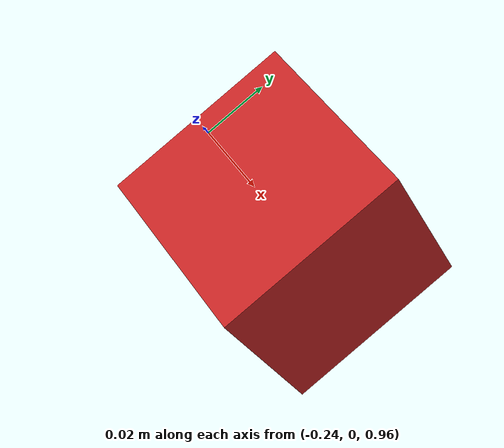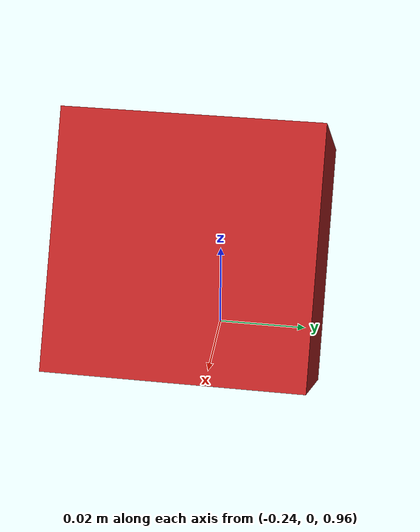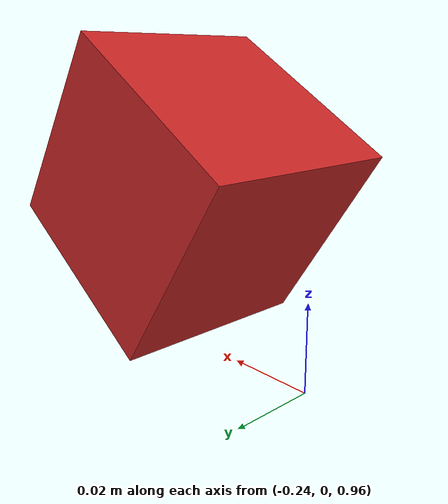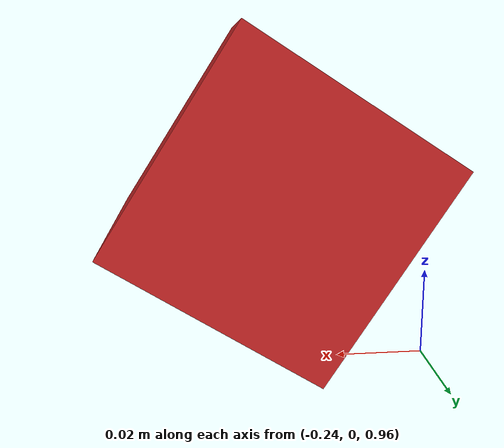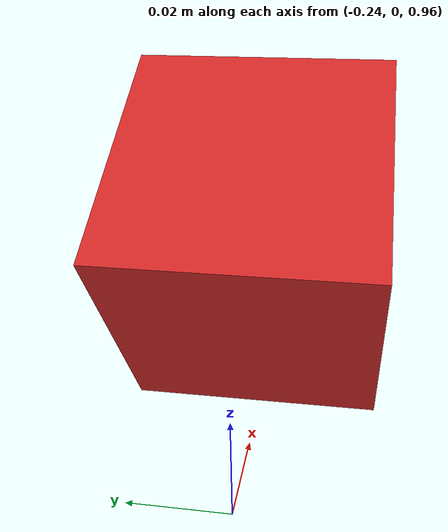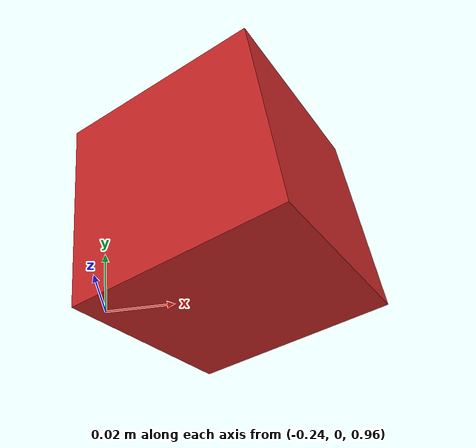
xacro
<?xml version="1.0"?>
<robot xmlns:xacro="http://www.ros.org/wiki/xacro" name="projector">

    <xacro:include filename="$(find projector)/urdf/inertial_macros.xacro"/>

    <link name="base_link"/>
    <link name="world"/>

    <joint name="world_joint" type="fixed">
        <parent link="world"/>
        <child link="base_link"/>
        <!-- TODO: check base_link name of robot -->
        <origin rpy="0.0 0.0 0.0" xyz="0.0 0.0 0.0"/>
    </joint>

    <link name="projector_link">
        <xacro:inertial_box mass="0.03" x="0.05" y="0.05" z="0.05">
            <origin xyz="0 0 0" rpy="0 0 0"/>
        </xacro:inertial_box>
        <visual>
            <origin xyz="0.0 0.0 0.0"/>
            <geometry>
                <box size="0.05 0.05 0.05"/>
            </geometry>
            <material name="red"/>
        </visual>
        <collision>
            <origin xyz="0.0 0.0 0.0"/>
            <geometry>
                <box size="0.05 0.05 0.05"/>
            </geometry>
        </collision>
    </link>

    <joint name="projector_joint" type="fixed">
        <origin xyz="-0.205 0.0 1.0" rpy="1.0 0.0 1.57"/>
        <parent link="base_link"/>
        <child link="projector_link"/>
    </joint>

    <!-- projector -->
    <gazebo reference="projector_link">
        <material>Gazebo/Red</material>
        <projector name="projector1">
            <pose> 0 0 0 0 0 0 </pose>
            <texture>building_frame.png</texture>
            <near_clip>0.01</near_clip>
            <far_clip>10.0</far_clip>
            <fov>0.5</fov>
            <plugin name="projector_controller" filename="libgazebo_ros_projector.so">
                <update_rate>10.0</update_rate>
            </plugin>
        </projector>
    </gazebo>

</robot>

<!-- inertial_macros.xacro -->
<robot xmlns:xacro="http://www.ros.org/wiki/xacro">

    <!-- Specify some standard inertial calculations https://en.wikipedia.org/wiki/List_of_moments_of_inertia -->
    <!-- These make use of xacro's mathematical functionality -->
    <!-- Author: https://github.com/joshnewans/articubot_one -->

    <xacro:macro name="inertial_sphere" params="mass radius *origin">
        <inertial>
            <xacro:insert_block name="origin"/>
            <mass value="${mass}" />
            <inertia ixx="${(2/5) * mass * (radius*radius)}" ixy="0.0" ixz="0.0"
                    iyy="${(2/5) * mass * (radius*radius)}" iyz="0.0"
                    izz="${(2/5) * mass * (radius*radius)}" />
        </inertial>
    </xacro:macro>

    <xacro:macro name="inertial_box" params="mass x y z *origin">
        <inertial>
            <xacro:insert_block name="origin"/>
            <mass value="${mass}" />
            <inertia ixx="${(1/12) * mass * (y*y+z*z)}" ixy="0.0" ixz="0.0"
                    iyy="${(1/12) * mass * (x*x+z*z)}" iyz="0.0"
                    izz="${(1/12) * mass * (x*x+y*y)}" />
        </inertial>
    </xacro:macro>

    <xacro:macro name="inertial_cylinder" params="mass length radius *origin">
        <inertial>
            <xacro:insert_block name="origin"/>
            <mass value="${mass}" />
            <inertia ixx="${(1/12) * mass * (3*radius*radius + length*length)}" ixy="0.0" ixz="0.0"
                    iyy="${(1/12) * mass * (3*radius*radius + length*length)}" iyz="0.0"
                    izz="${(1/2) * mass * (radius*radius)}" />
        </inertial>
    </xacro:macro>

</robot>
